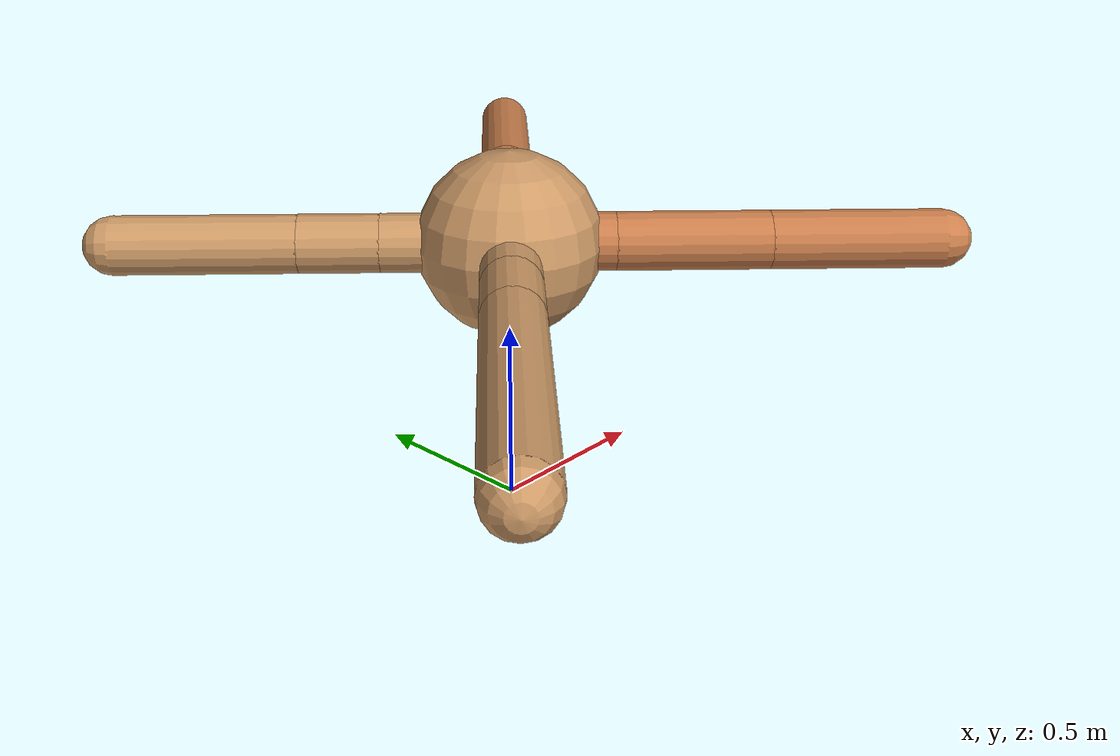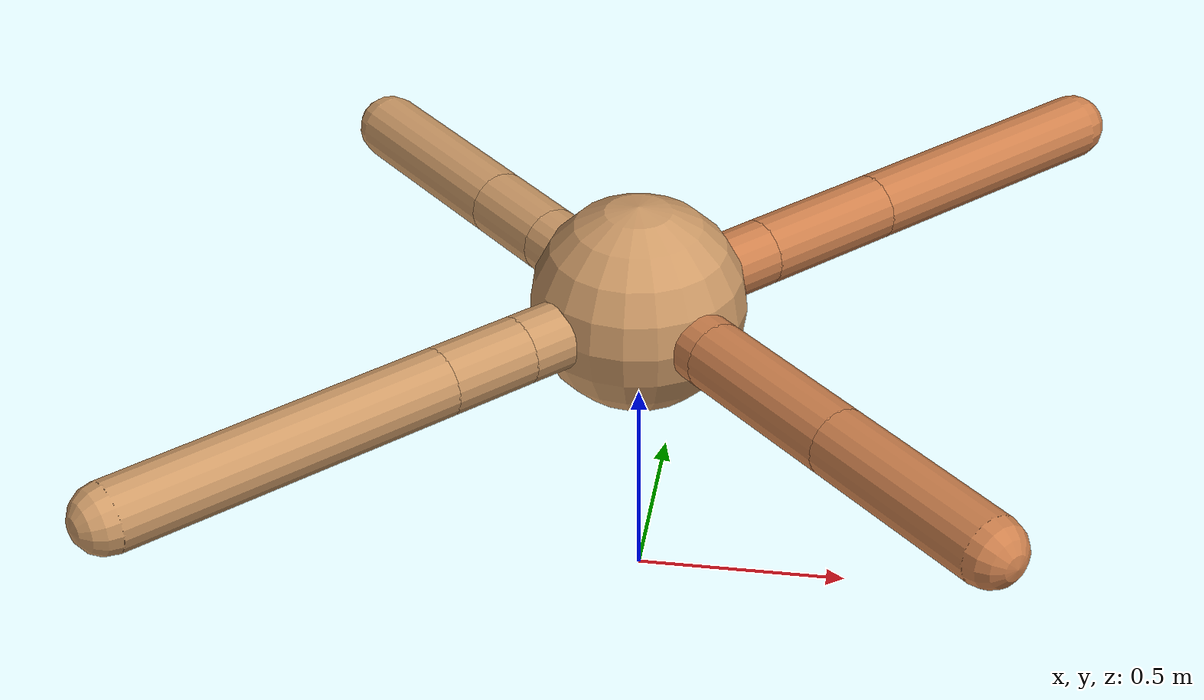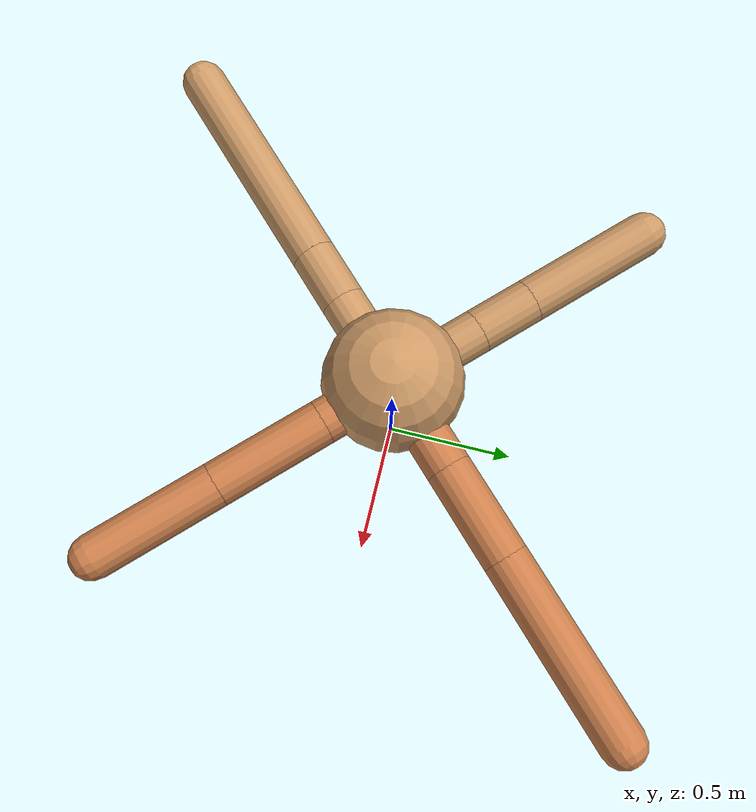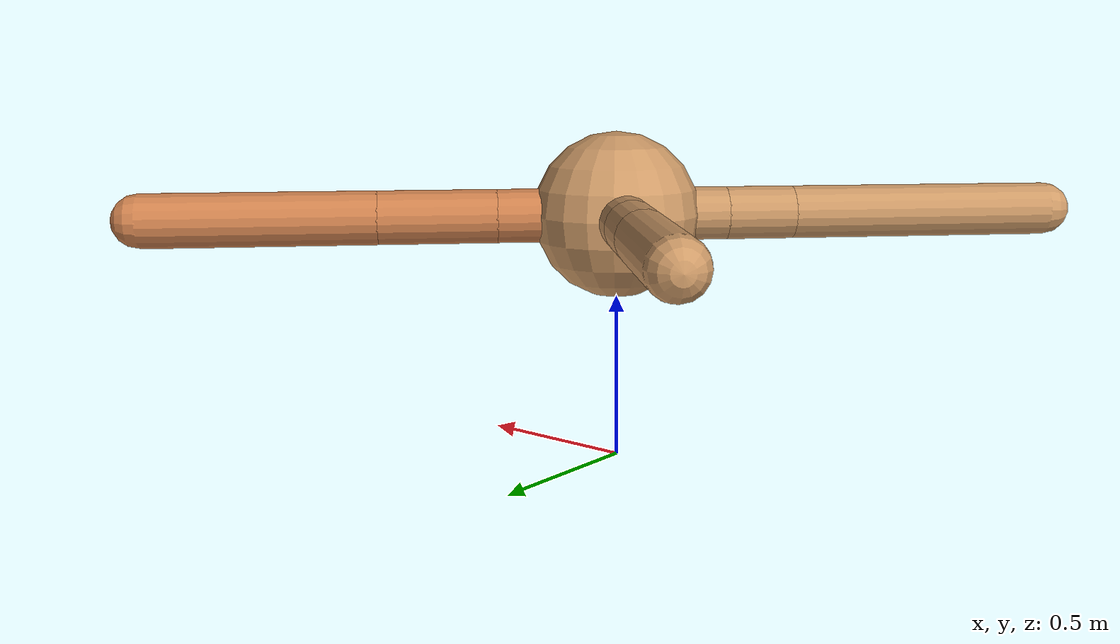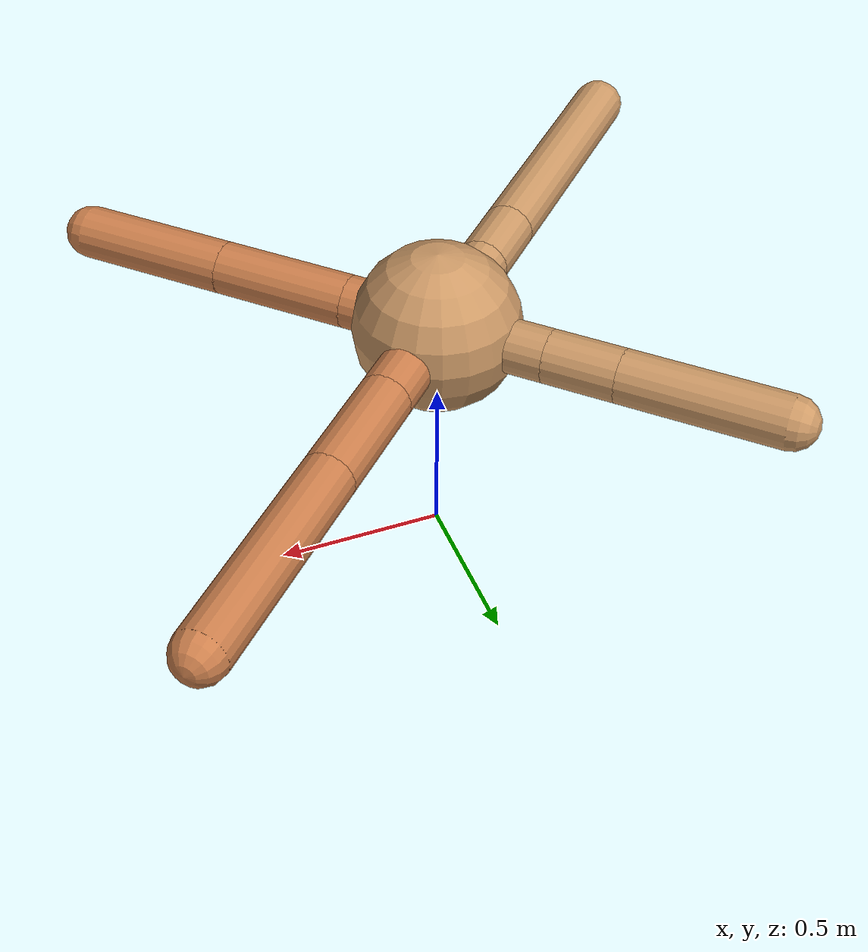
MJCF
<mujoco model="ant">
  <compiler angle="degree" coordinate="local" inertiafromgeom="true" />
  <option integrator="RK4" timestep="0.01" />
  <custom>
    <numeric data="0.0 0.0 0.55 1.0 0.0 0.0 0.0 0.0 1.0 0.0 -1.0 0.0 -1.0 0.0 1.0" name="init_qpos" />
  </custom>
  <default>
    <joint armature="1" damping="1" limited="true" />
    <geom conaffinity="0" condim="3" density="5.0" friction="1.5 0.1 0.1" margin="0.01" rgba="0.8 0.6 0.4 1" />
  </default>
  <worldbody>
    <body name="torso" pos="0 0 0.75">
      <geom name="torso_geom" pos="0 0 0" size="0.25" type="sphere" />

      <body name="front_left_leg" pos="0 0 0">
        <geom fromto="0.0 0.0 0.0 0.2536957243288346 0.2536957243288346 0.0" name="aux_1_geom" size="0.08" type="capsule" rgba=".8 .5 .3 1" />
        <body name="aux_1" pos="0.2536957243288346 0.2536957243288346 0.0">
          <joint axis="0 0 1" name="hip_1" pos="0.0 0.0 0.0" range="-40 40" type="hinge" />
          <geom fromto="0.0 0.0 0.0 0.24752704210763438 0.24752704210763438 0.0" name="left_leg_geom" size="0.08" type="capsule" rgba=".8 .5 .3 1" />
          <body pos="0.24752704210763438 0.24752704210763438 0.0" name="front_left_foot">
            <joint axis="-1 1 0" name="ankle_1" pos="0.0 0.0 0.0" range="30 100" type="hinge" />
            <geom fromto="0.0 0.0 0.0 0.4796731386252656 0.4796731386252656 0.0" name="left_ankle_geom" size="0.08" type="capsule" rgba=".8 .5 .3 1" />
          </body>
        </body>
      </body>
      <body name="front_right_leg" pos="0 0 0">
        <geom fromto="0.0 0.0 0.0 -0.24280971137403712 0.24280971137403712 0.0" name="aux_2_geom" size="0.08" type="capsule" />
        <body name="aux_2" pos="-0.24280971137403712 0.24280971137403712 0.0">
          <joint axis="0 0 1" name="hip_2" pos="0.0 0.0 0.0" range="-40 40" type="hinge" />
          <geom fromto="0.0 0.0 0.0 -0.15260680411549507 0.15260680411549507 0.0" name="right_leg_geom" size="0.08" type="capsule" />
          <body pos="-0.15260680411549507 0.15260680411549507 0.0" name="front_right_foot">
            <joint axis="1 1 0" name="ankle_2" pos="0.0 0.0 0.0" range="-100 -30" type="hinge" />
            <geom fromto="0.0 0.0 0.0 -0.34556912065660267 0.34556912065660267 0.0" name="right_ankle_geom" size="0.08" type="capsule" />
          </body>
        </body>
      </body>
      <body name="left_back_leg" pos="0 0 0">
        <geom fromto="0.0 0.0 0.0 -0.23726006914911904 -0.23726006914911904 0.0" name="aux_3_geom" size="0.08" type="capsule" />
        <body name="aux_3" pos="-0.23726006914911904 -0.23726006914911904 0.0">
          <joint axis="0 0 1" name="hip_3" pos="0.0 0.0 0.0" range="-40 40" type="hinge" />
          <geom fromto="0.0 0.0 0.0 -0.145520590683647 -0.145520590683647 0.0" name="back_leg_geom" size="0.08" type="capsule" />
          <body pos="-0.145520590683647 -0.145520590683647 0.0" name="left_back_foot">
            <joint axis="-1 1 0" name="ankle_3" pos="0.0 0.0 0.0" range="-100 -30" type="hinge" />
            <geom fromto="0.0 0.0 0.0 -0.5719292088906326 -0.5719292088906326 0.0" name="third_ankle_geom" size="0.08" type="capsule" />
          </body>
        </body>
      </body>
      <body name="right_back_leg" pos="0 0 0">
        <geom fromto="0.0 0.0 0.0 0.2 -0.2 0.0" name="aux_4_geom" size="0.08" type="capsule" rgba=".8 .5 .3 1" />
        <body name="aux_4" pos="0.2 -0.2 0.0">
          <joint axis="0 0 1" name="hip_4" pos="0.0 0.0 0.0" range="-40 40" type="hinge" />
          <geom fromto="0.0 0.0 0.0 0.29155077142607766 -0.29155077142607766 0.0" name="rightback_leg_geom" size="0.08" type="capsule" rgba=".8 .5 .3 1" />
          <body pos="0.29155077142607766 -0.29155077142607766 0.0" name="right_back_foot">
            <joint axis="1 1 0" name="ankle_4" pos="0.0 0.0 0.0" range="30 100" type="hinge" />
            <geom fromto="0.0 0.0 0.0 0.32815256216552613 -0.32815256216552613 0.0" name="fourth_ankle_geom" size="0.08" type="capsule" rgba=".8 .5 .3 1" />
          </body>
        </body>
      </body>
    </body>
  </worldbody>
  <actuator>
    <motor ctrllimited="true" ctrlrange="-1.0 1.0" joint="hip_4" gear="150" />
    <motor ctrllimited="true" ctrlrange="-1.0 1.0" joint="ankle_4" gear="150" />
    <motor ctrllimited="true" ctrlrange="-1.0 1.0" joint="hip_1" gear="150" />
    <motor ctrllimited="true" ctrlrange="-1.0 1.0" joint="ankle_1" gear="150" />
    <motor ctrllimited="true" ctrlrange="-1.0 1.0" joint="hip_2" gear="150" />
    <motor ctrllimited="true" ctrlrange="-1.0 1.0" joint="ankle_2" gear="150" />
    <motor ctrllimited="true" ctrlrange="-1.0 1.0" joint="hip_3" gear="150" />
    <motor ctrllimited="true" ctrlrange="-1.0 1.0" joint="ankle_3" gear="150" />
  </actuator>
</mujoco>
